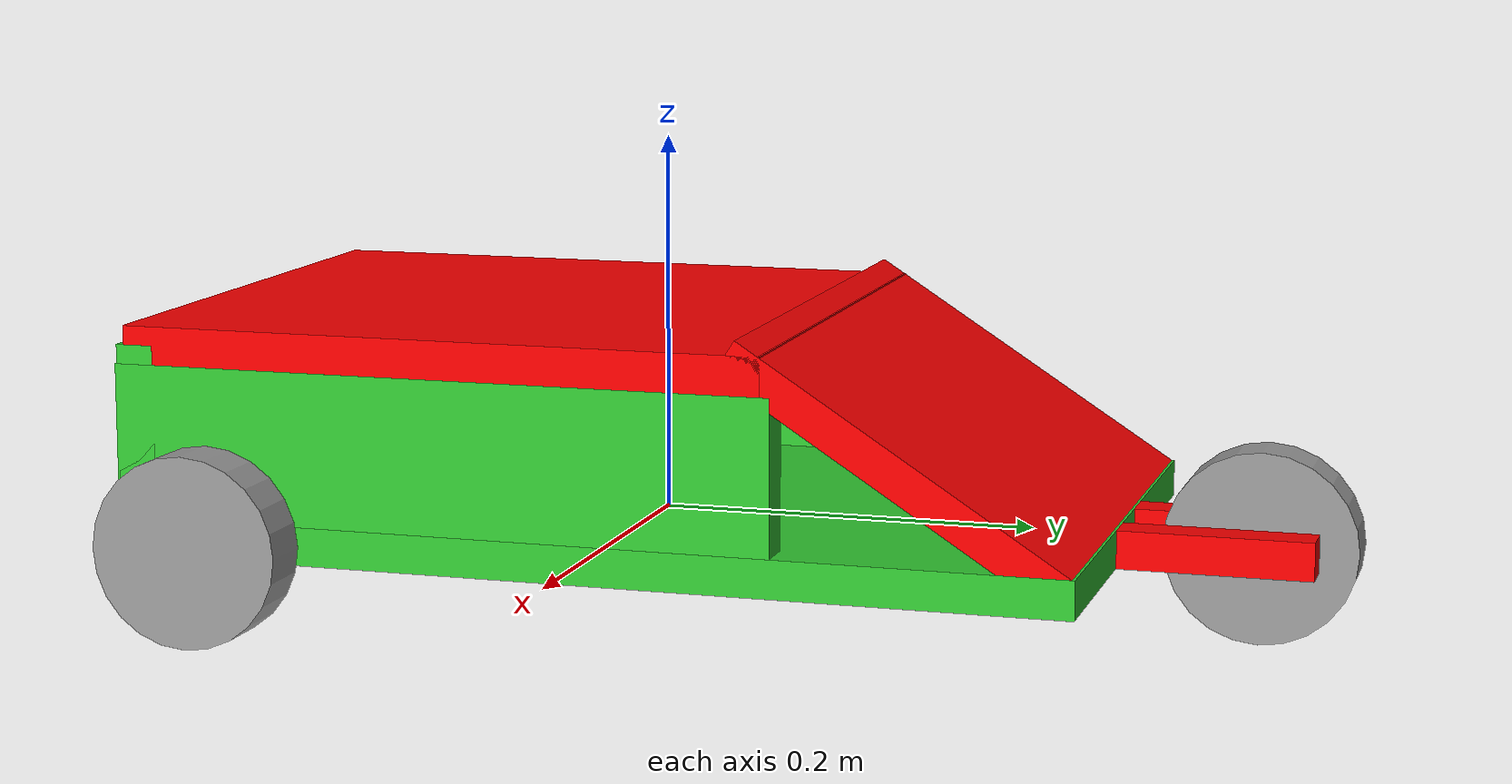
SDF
<?xml version='1.0'?>
<sdf version='1.6'>
  <model name='my_bot'>
    <link name='link_12'>
      <pose frame=''>-1e-06 0.16 0.055 1 -0 0</pose>
      <inertial>
        <mass>1</mass>
        <inertia>
          <ixx>0.166667</ixx>
          <ixy>0</ixy>
          <ixz>0</ixz>
          <iyy>0.166667</iyy>
          <iyz>0</iyz>
          <izz>0.166667</izz>
        </inertia>
        <pose frame=''>0 0 0 0 -0 0</pose>
      </inertial>
      <self_collide>0</self_collide>
      <kinematic>0</kinematic>
      <gravity>1</gravity>
      <visual name='visual'>
        <pose frame=''>0 0 0 0 -0 0</pose>
        <geometry>
          <box>
            <size>0.3 0.02 0.2</size>
          </box>
        </geometry>
        <material>
          <lighting>1</lighting>
          <script>
            <uri>file://media/materials/scripts/gazebo.material</uri>
            <name>Gazebo/Grey</name>
          </script>
          <ambient>1 0 0 1</ambient>
          <diffuse>0.7 0.7 0.7 1</diffuse>
          <specular>0.01 0.01 0.01 1</specular>
          <emissive>0 0 0 1</emissive>
          <shader type='vertex'>
            <normal_map>__default__</normal_map>
          </shader>
        </material>
        <transparency>0</transparency>
        <cast_shadows>1</cast_shadows>
      </visual>
      <collision name='collision'>
        <laser_retro>0</laser_retro>
        <max_contacts>10</max_contacts>
        <pose frame=''>0 0 0 0 -0 0</pose>
        <geometry>
          <box>
            <size>0.3 0.02 0.2</size>
          </box>
        </geometry>
        <surface>
          <friction>
            <ode>
              <mu>1</mu>
              <mu2>1</mu2>
              <fdir1>0 0 0</fdir1>
              <slip1>0</slip1>
              <slip2>0</slip2>
            </ode>
            <torsional>
              <coefficient>1</coefficient>
              <patch_radius>0</patch_radius>
              <surface_radius>0</surface_radius>
              <use_patch_radius>1</use_patch_radius>
              <ode>
                <slip>0</slip>
              </ode>
            </torsional>
          </friction>
          <bounce>
            <restitution_coefficient>0</restitution_coefficient>
            <threshold>1e+06</threshold>
          </bounce>
          <contact>
            <collide_without_contact>0</collide_without_contact>
            <collide_without_contact_bitmask>1</collide_without_contact_bitmask>
            <collide_bitmask>1</collide_bitmask>
            <ode>
              <soft_cfm>0</soft_cfm>
              <soft_erp>0.2</soft_erp>
              <kp>1e+13</kp>
              <kd>1</kd>
              <max_vel>0.01</max_vel>
              <min_depth>0</min_depth>
            </ode>
            <bullet>
              <split_impulse>1</split_impulse>
              <split_impulse_penetration_threshold>-0.01</split_impulse_penetration_threshold>
              <soft_cfm>0</soft_cfm>
              <soft_erp>0.2</soft_erp>
              <kp>1e+13</kp>
              <kd>1</kd>
            </bullet>
          </contact>
        </surface>
      </collision>
    </link>
    <link name='link_5'>
      <pose frame=''>0 0 0 0 -0 0</pose>
      <inertial>
        <mass>1</mass>
        <inertia>
          <ixx>0.166667</ixx>
          <ixy>0</ixy>
          <ixz>0</ixz>
          <iyy>0.166667</iyy>
          <iyz>0</iyz>
          <izz>0.166667</izz>
        </inertia>
        <pose frame=''>0 0 0 0 -0 0</pose>
      </inertial>
      <self_collide>0</self_collide>
      <kinematic>0</kinematic>
      <gravity>1</gravity>
      <visual name='visual'>
        <pose frame=''>0 0 0 0 -0 0</pose>
        <geometry>
          <box>
            <size>0.3 0.5 0.02</size>
          </box>
        </geometry>
        <material>
          <lighting>1</lighting>
          <script>
            <uri>file://media/materials/scripts/gazebo.material</uri>
            <name>Gazebo/Grey</name>
          </script>
          <ambient>0.2 0.8 0.2 1</ambient>
          <diffuse>0.7 0.7 0.7 1</diffuse>
          <specular>0.01 0.01 0.01 1</specular>
          <emissive>0 0 0 1</emissive>
          <shader type='vertex'>
            <normal_map>__default__</normal_map>
          </shader>
        </material>
        <transparency>0</transparency>
        <cast_shadows>1</cast_shadows>
      </visual>
      <collision name='collision'>
        <laser_retro>0</laser_retro>
        <max_contacts>10</max_contacts>
        <pose frame=''>0 0 0 0 -0 0</pose>
        <geometry>
          <box>
            <size>0.3 0.5 0.02</size>
          </box>
        </geometry>
        <surface>
          <friction>
            <ode>
              <mu>1</mu>
              <mu2>1</mu2>
              <fdir1>0 0 0</fdir1>
              <slip1>0</slip1>
              <slip2>0</slip2>
            </ode>
            <torsional>
              <coefficient>1</coefficient>
              <patch_radius>0</patch_radius>
              <surface_radius>0</surface_radius>
              <use_patch_radius>1</use_patch_radius>
              <ode>
                <slip>0</slip>
              </ode>
            </torsional>
          </friction>
          <bounce>
            <restitution_coefficient>0</restitution_coefficient>
            <threshold>1e+06</threshold>
          </bounce>
          <contact>
            <collide_without_contact>0</collide_without_contact>
            <collide_without_contact_bitmask>1</collide_without_contact_bitmask>
            <collide_bitmask>1</collide_bitmask>
            <ode>
              <soft_cfm>0</soft_cfm>
              <soft_erp>0.2</soft_erp>
              <kp>1e+13</kp>
              <kd>1</kd>
              <max_vel>0.01</max_vel>
              <min_depth>0</min_depth>
            </ode>
            <bullet>
              <split_impulse>1</split_impulse>
              <split_impulse_penetration_threshold>-0.01</split_impulse_penetration_threshold>
              <soft_cfm>0</soft_cfm>
              <soft_erp>0.2</soft_erp>
              <kp>1e+13</kp>
              <kd>1</kd>
            </bullet>
          </contact>
        </surface>
      </collision>
    </link>
    <link name='link_5_clone'>
      <pose frame=''>-0.139999 -0.076 0.04 3.12691 1.57079 3.12691</pose>
      <inertial>
        <mass>1</mass>
        <inertia>
          <ixx>0.166667</ixx>
          <ixy>0</ixy>
          <ixz>0</ixz>
          <iyy>0.166667</iyy>
          <iyz>0</iyz>
          <izz>0.166667</izz>
        </inertia>
        <pose frame=''>0 0 0 0 -0 0</pose>
      </inertial>
      <self_collide>0</self_collide>
      <kinematic>0</kinematic>
      <gravity>1</gravity>
      <visual name='visual'>
        <pose frame=''>0 0 0 0 -0 0</pose>
        <geometry>
          <box>
            <size>0.1 0.35 0.02</size>
          </box>
        </geometry>
        <material>
          <lighting>1</lighting>
          <script>
            <uri>file://media/materials/scripts/gazebo.material</uri>
            <name>Gazebo/Grey</name>
          </script>
          <ambient>0.2 0.8 0.2 1</ambient>
          <diffuse>0.7 0.7 0.7 1</diffuse>
          <specular>0.01 0.01 0.01 1</specular>
          <emissive>0 0 0 1</emissive>
          <shader type='vertex'>
            <normal_map>__default__</normal_map>
          </shader>
        </material>
        <transparency>0</transparency>
        <cast_shadows>1</cast_shadows>
      </visual>
      <collision name='collision'>
        <laser_retro>0</laser_retro>
        <max_contacts>10</max_contacts>
        <pose frame=''>0 0 0 0 -0 0</pose>
        <geometry>
          <box>
            <size>0.1 0.35 0.02</size>
          </box>
        </geometry>
        <surface>
          <friction>
            <ode>
              <mu>1</mu>
              <mu2>1</mu2>
              <fdir1>0 0 0</fdir1>
              <slip1>0</slip1>
              <slip2>0</slip2>
            </ode>
            <torsional>
              <coefficient>1</coefficient>
              <patch_radius>0</patch_radius>
              <surface_radius>0</surface_radius>
              <use_patch_radius>1</use_patch_radius>
              <ode>
                <slip>0</slip>
              </ode>
            </torsional>
          </friction>
          <bounce>
            <restitution_coefficient>0</restitution_coefficient>
            <threshold>1e+06</threshold>
          </bounce>
          <contact>
            <collide_without_contact>0</collide_without_contact>
            <collide_without_contact_bitmask>1</collide_without_contact_bitmask>
            <collide_bitmask>1</collide_bitmask>
            <ode>
              <soft_cfm>0</soft_cfm>
              <soft_erp>0.2</soft_erp>
              <kp>1e+13</kp>
              <kd>1</kd>
              <max_vel>0.01</max_vel>
              <min_depth>0</min_depth>
            </ode>
            <bullet>
              <split_impulse>1</split_impulse>
              <split_impulse_penetration_threshold>-0.01</split_impulse_penetration_threshold>
              <soft_cfm>0</soft_cfm>
              <soft_erp>0.2</soft_erp>
              <kp>1e+13</kp>
              <kd>1</kd>
            </bullet>
          </contact>
        </surface>
      </collision>
    </link>
    <link name='link_5_clone_0'>
      <pose frame=''>-1e-06 -0.076 0.1 0 -0 0</pose>
      <inertial>
        <mass>0.999845</mass>
        <inertia>
          <ixx>0.166615</ixx>
          <ixy>0</ixy>
          <ixz>0</ixz>
          <iyy>0.166641</iyy>
          <iyz>0</iyz>
          <izz>0.166615</izz>
        </inertia>
        <pose frame=''>0 0 0 0 -0 0</pose>
      </inertial>
      <self_collide>0</self_collide>
      <kinematic>0</kinematic>
      <gravity>1</gravity>
      <visual name='visual'>
        <pose frame=''>0 0 0 0 -0 0</pose>
        <geometry>
          <box>
            <size>0.3 0.339947 0.02</size>
          </box>
        </geometry>
        <material>
          <lighting>1</lighting>
          <script>
            <uri>file://media/materials/scripts/gazebo.material</uri>
            <name>Gazebo/Grey</name>
          </script>
          <ambient>1 0 0 1</ambient>
          <diffuse>0.7 0.7 0.7 1</diffuse>
          <specular>0.01 0.01 0.01 1</specular>
          <emissive>0 0 0 1</emissive>
          <shader type='vertex'>
            <normal_map>__default__</normal_map>
          </shader>
        </material>
        <transparency>0</transparency>
        <cast_shadows>1</cast_shadows>
      </visual>
      <collision name='collision'>
        <laser_retro>0</laser_retro>
        <max_contacts>10</max_contacts>
        <pose frame=''>0 0 0 0 -0 0</pose>
        <geometry>
          <box>
            <size>0.3 0.339947 0.02</size>
          </box>
        </geometry>
        <surface>
          <friction>
            <ode>
              <mu>1</mu>
              <mu2>1</mu2>
              <fdir1>0 0 0</fdir1>
              <slip1>0</slip1>
              <slip2>0</slip2>
            </ode>
            <torsional>
              <coefficient>1</coefficient>
              <patch_radius>0</patch_radius>
              <surface_radius>0</surface_radius>
              <use_patch_radius>1</use_patch_radius>
              <ode>
                <slip>0</slip>
              </ode>
            </torsional>
          </friction>
          <bounce>
            <restitution_coefficient>0</restitution_coefficient>
            <threshold>1e+06</threshold>
          </bounce>
          <contact>
            <collide_without_contact>0</collide_without_contact>
            <collide_without_contact_bitmask>1</collide_without_contact_bitmask>
            <collide_bitmask>1</collide_bitmask>
            <ode>
              <soft_cfm>0</soft_cfm>
              <soft_erp>0.2</soft_erp>
              <kp>1e+13</kp>
              <kd>1</kd>
              <max_vel>0.01</max_vel>
              <min_depth>0</min_depth>
            </ode>
            <bullet>
              <split_impulse>1</split_impulse>
              <split_impulse_penetration_threshold>-0.01</split_impulse_penetration_threshold>
              <soft_cfm>0</soft_cfm>
              <soft_erp>0.2</soft_erp>
              <kp>1e+13</kp>
              <kd>1</kd>
            </bullet>
          </contact>
        </surface>
      </collision>
    </link>
    <link name='link_5_clone_clone'>
      <pose frame=''>0.14 -0.076 0.04 3.12691 1.57079 3.12691</pose>
      <inertial>
        <mass>1</mass>
        <inertia>
          <ixx>0.166667</ixx>
          <ixy>0</ixy>
          <ixz>0</ixz>
          <iyy>0.166667</iyy>
          <iyz>0</iyz>
          <izz>0.166667</izz>
        </inertia>
        <pose frame=''>0 0 0 0 -0 0</pose>
      </inertial>
      <self_collide>0</self_collide>
      <kinematic>0</kinematic>
      <gravity>1</gravity>
      <visual name='visual'>
        <pose frame=''>0 0 0 0 -0 0</pose>
        <geometry>
          <box>
            <size>0.1 0.35 0.02</size>
          </box>
        </geometry>
        <material>
          <lighting>1</lighting>
          <script>
            <uri>file://media/materials/scripts/gazebo.material</uri>
            <name>Gazebo/Grey</name>
          </script>
          <ambient>0.2 0.8 0.2 1</ambient>
          <diffuse>0.7 0.7 0.7 1</diffuse>
          <specular>0.01 0.01 0.01 1</specular>
          <emissive>0 0 0 1</emissive>
          <shader type='vertex'>
            <normal_map>__default__</normal_map>
          </shader>
        </material>
        <transparency>0</transparency>
        <cast_shadows>1</cast_shadows>
      </visual>
      <collision name='collision'>
        <laser_retro>0</laser_retro>
        <max_contacts>10</max_contacts>
        <pose frame=''>0 0 0 0 -0 0</pose>
        <geometry>
          <box>
            <size>0.1 0.35 0.02</size>
          </box>
        </geometry>
        <surface>
          <friction>
            <ode>
              <mu>1</mu>
              <mu2>1</mu2>
              <fdir1>0 0 0</fdir1>
              <slip1>0</slip1>
              <slip2>0</slip2>
            </ode>
            <torsional>
              <coefficient>1</coefficient>
              <patch_radius>0</patch_radius>
              <surface_radius>0</surface_radius>
              <use_patch_radius>1</use_patch_radius>
              <ode>
                <slip>0</slip>
              </ode>
            </torsional>
          </friction>
          <bounce>
            <restitution_coefficient>0</restitution_coefficient>
            <threshold>1e+06</threshold>
          </bounce>
          <contact>
            <collide_without_contact>0</collide_without_contact>
            <collide_without_contact_bitmask>1</collide_without_contact_bitmask>
            <collide_bitmask>1</collide_bitmask>
            <ode>
              <soft_cfm>0</soft_cfm>
              <soft_erp>0.2</soft_erp>
              <kp>1e+13</kp>
              <kd>1</kd>
              <max_vel>0.01</max_vel>
              <min_depth>0</min_depth>
            </ode>
            <bullet>
              <split_impulse>1</split_impulse>
              <split_impulse_penetration_threshold>-0.01</split_impulse_penetration_threshold>
              <soft_cfm>0</soft_cfm>
              <soft_erp>0.2</soft_erp>
              <kp>1e+13</kp>
              <kd>1</kd>
            </bullet>
          </contact>
        </surface>
      </collision>
    </link>
    <link name='link_5_clone_clone_clone'>
      <pose frame=''>0 -0.239999 0.05 -1.53302 1.57079 0.037763</pose>
      <inertial>
        <mass>1</mass>
        <inertia>
          <ixx>0.166667</ixx>
          <ixy>0</ixy>
          <ixz>0</ixz>
          <iyy>0.166667</iyy>
          <iyz>0</iyz>
          <izz>0.166667</izz>
        </inertia>
        <pose frame=''>1.4 0.7 1 0 -0 0</pose>
      </inertial>
      <self_collide>0</self_collide>
      <kinematic>0</kinematic>
      <gravity>1</gravity>
      <visual name='visual'>
        <pose frame=''>0 0 0 0 -0 0</pose>
        <geometry>
          <box>
            <size>0.1 0.3 0.02</size>
          </box>
        </geometry>
        <material>
          <lighting>1</lighting>
          <script>
            <uri>file://media/materials/scripts/gazebo.material</uri>
            <name>Gazebo/Grey</name>
          </script>
          <ambient>0.2 0.8 0.2 1</ambient>
          <diffuse>0.7 0.7 0.7 1</diffuse>
          <specular>0.01 0.01 0.01 1</specular>
          <emissive>0 0 0 1</emissive>
          <shader type='vertex'>
            <normal_map>__default__</normal_map>
          </shader>
        </material>
        <transparency>0</transparency>
        <cast_shadows>1</cast_shadows>
      </visual>
      <collision name='collision'>
        <laser_retro>0</laser_retro>
        <max_contacts>10</max_contacts>
        <pose frame=''>0 0 0 0 -0 0</pose>
        <geometry>
          <box>
            <size>0.1 0.3 0.02</size>
          </box>
        </geometry>
        <surface>
          <friction>
            <ode>
              <mu>1</mu>
              <mu2>1</mu2>
              <fdir1>0 0 0</fdir1>
              <slip1>0</slip1>
              <slip2>0</slip2>
            </ode>
            <torsional>
              <coefficient>1</coefficient>
              <patch_radius>0</patch_radius>
              <surface_radius>0</surface_radius>
              <use_patch_radius>1</use_patch_radius>
              <ode>
                <slip>0</slip>
              </ode>
            </torsional>
          </friction>
          <bounce>
            <restitution_coefficient>0</restitution_coefficient>
            <threshold>1e+06</threshold>
          </bounce>
          <contact>
            <collide_without_contact>0</collide_without_contact>
            <collide_without_contact_bitmask>1</collide_without_contact_bitmask>
            <collide_bitmask>1</collide_bitmask>
            <ode>
              <soft_cfm>0</soft_cfm>
              <soft_erp>0.2</soft_erp>
              <kp>1e+13</kp>
              <kd>1</kd>
              <max_vel>0.01</max_vel>
              <min_depth>0</min_depth>
            </ode>
            <bullet>
              <split_impulse>1</split_impulse>
              <split_impulse_penetration_threshold>-0.01</split_impulse_penetration_threshold>
              <soft_cfm>0</soft_cfm>
              <soft_erp>0.2</soft_erp>
              <kp>1e+13</kp>
              <kd>1</kd>
            </bullet>
          </contact>
        </surface>
      </collision>
    </link>
    <link name='link_6'>
      <pose frame=''>-0.167 -0.2 -0 3.12691 1.57079 3.12691</pose>
      <inertial>
        <mass>1</mass>
        <inertia>
          <ixx>0.145833</ixx>
          <ixy>0</ixy>
          <ixz>0</ixz>
          <iyy>0.145833</iyy>
          <iyz>0</iyz>
          <izz>0.125</izz>
        </inertia>
        <pose frame=''>0 0 0 0 -0 0</pose>
      </inertial>
      <self_collide>0</self_collide>
      <kinematic>0</kinematic>
      <gravity>1</gravity>
      <visual name='visual'>
        <pose frame=''>0 0 0 0 -0 0</pose>
        <geometry>
          <cylinder>
            <radius>0.05</radius>
            <length>0.03</length>
          </cylinder>
        </geometry>
        <material>
          <lighting>1</lighting>
          <script>
            <uri>file://media/materials/scripts/gazebo.material</uri>
            <name>Gazebo/Grey</name>
          </script>
          <ambient>0 0 0 1</ambient>
          <diffuse>0.7 0.7 0.7 1</diffuse>
          <specular>0.01 0.01 0.01 1</specular>
          <emissive>0 0 0 1</emissive>
          <shader type='vertex'>
            <normal_map>__default__</normal_map>
          </shader>
        </material>
        <transparency>0</transparency>
        <cast_shadows>1</cast_shadows>
      </visual>
      <collision name='collision'>
        <laser_retro>0</laser_retro>
        <max_contacts>10</max_contacts>
        <pose frame=''>0 0 0 0 -0 0</pose>
        <geometry>
          <cylinder>
            <radius>0.05</radius>
            <length>0.03</length>
          </cylinder>
        </geometry>
        <surface>
          <friction>
            <ode>
              <mu>1</mu>
              <mu2>1</mu2>
              <fdir1>0 0 0</fdir1>
              <slip1>0</slip1>
              <slip2>0</slip2>
            </ode>
            <torsional>
              <coefficient>1</coefficient>
              <patch_radius>0</patch_radius>
              <surface_radius>0</surface_radius>
              <use_patch_radius>1</use_patch_radius>
              <ode>
                <slip>0</slip>
              </ode>
            </torsional>
          </friction>
          <bounce>
            <restitution_coefficient>0</restitution_coefficient>
            <threshold>1e+06</threshold>
          </bounce>
          <contact>
            <collide_without_contact>0</collide_without_contact>
            <collide_without_contact_bitmask>1</collide_without_contact_bitmask>
            <collide_bitmask>1</collide_bitmask>
            <ode>
              <soft_cfm>0</soft_cfm>
              <soft_erp>0.2</soft_erp>
              <kp>1e+13</kp>
              <kd>1</kd>
              <max_vel>0.01</max_vel>
              <min_depth>0</min_depth>
            </ode>
            <bullet>
              <split_impulse>1</split_impulse>
              <split_impulse_penetration_threshold>-0.01</split_impulse_penetration_threshold>
              <soft_cfm>0</soft_cfm>
              <soft_erp>0.2</soft_erp>
              <kp>1e+13</kp>
              <kd>1</kd>
            </bullet>
          </contact>
        </surface>
      </collision>
    </link>
    <link name='link_6_clone'>
      <pose frame=''>0 0.32 0 3.08926 1.57079 3.08926</pose>
      <inertial>
        <mass>1</mass>
        <inertia>
          <ixx>0.145833</ixx>
          <ixy>0</ixy>
          <ixz>0</ixz>
          <iyy>0.145833</iyy>
          <iyz>0</iyz>
          <izz>0.125</izz>
        </inertia>
        <pose frame=''>0 0 0 0 -0 0</pose>
      </inertial>
      <self_collide>0</self_collide>
      <kinematic>0</kinematic>
      <gravity>1</gravity>
      <visual name='visual'>
        <pose frame=''>0 0 0 0 -0 0</pose>
        <geometry>
          <cylinder>
            <radius>0.05</radius>
            <length>0.03</length>
          </cylinder>
        </geometry>
        <material>
          <lighting>1</lighting>
          <script>
            <uri>file://media/materials/scripts/gazebo.material</uri>
            <name>Gazebo/Grey</name>
          </script>
          <ambient>0 0 0 1</ambient>
          <diffuse>0.7 0.7 0.7 1</diffuse>
          <specular>0.01 0.01 0.01 1</specular>
          <emissive>0 0 0 1</emissive>
          <shader type='vertex'>
            <normal_map>__default__</normal_map>
          </shader>
        </material>
        <transparency>0</transparency>
        <cast_shadows>1</cast_shadows>
      </visual>
      <collision name='collision'>
        <laser_retro>0</laser_retro>
        <max_contacts>10</max_contacts>
        <pose frame=''>0 0 0 0 -0 0</pose>
        <geometry>
          <cylinder>
            <radius>0.05</radius>
            <length>0.03</length>
          </cylinder>
        </geometry>
        <surface>
          <friction>
            <ode>
              <mu>1</mu>
              <mu2>1</mu2>
              <fdir1>0 0 0</fdir1>
              <slip1>0</slip1>
              <slip2>0</slip2>
            </ode>
            <torsional>
              <coefficient>1</coefficient>
              <patch_radius>0</patch_radius>
              <surface_radius>0</surface_radius>
              <use_patch_radius>1</use_patch_radius>
              <ode>
                <slip>0</slip>
              </ode>
            </torsional>
          </friction>
          <bounce>
            <restitution_coefficient>0</restitution_coefficient>
            <threshold>1e+06</threshold>
          </bounce>
          <contact>
            <collide_without_contact>0</collide_without_contact>
            <collide_without_contact_bitmask>1</collide_without_contact_bitmask>
            <collide_bitmask>1</collide_bitmask>
            <ode>
              <soft_cfm>0</soft_cfm>
              <soft_erp>0.2</soft_erp>
              <kp>1e+13</kp>
              <kd>1</kd>
              <max_vel>0.01</max_vel>
              <min_depth>0</min_depth>
            </ode>
            <bullet>
              <split_impulse>1</split_impulse>
              <split_impulse_penetration_threshold>-0.01</split_impulse_penetration_threshold>
              <soft_cfm>0</soft_cfm>
              <soft_erp>0.2</soft_erp>
              <kp>1e+13</kp>
              <kd>1</kd>
            </bullet>
          </contact>
        </surface>
      </collision>
    </link>
    <link name='link_6_clone_0'>
      <pose frame=''>0.167001 -0.199998 -0 3.12691 1.57079 3.12691</pose>
      <inertial>
        <mass>1</mass>
        <inertia>
          <ixx>0.145833</ixx>
          <ixy>0</ixy>
          <ixz>0</ixz>
          <iyy>0.145833</iyy>
          <iyz>0</iyz>
          <izz>0.125</izz>
        </inertia>
        <pose frame=''>0 0 0 0 -0 0</pose>
      </inertial>
      <self_collide>0</self_collide>
      <kinematic>0</kinematic>
      <gravity>1</gravity>
      <visual name='visual'>
        <pose frame=''>0 0 0 0 -0 0</pose>
        <geometry>
          <cylinder>
            <radius>0.05</radius>
            <length>0.03</length>
          </cylinder>
        </geometry>
        <material>
          <lighting>1</lighting>
          <script>
            <uri>file://media/materials/scripts/gazebo.material</uri>
            <name>Gazebo/Grey</name>
          </script>
          <ambient>0 0 0 1</ambient>
          <diffuse>0.7 0.7 0.7 1</diffuse>
          <specular>0.01 0.01 0.01 1</specular>
          <emissive>0 0 0 1</emissive>
          <shader type='vertex'>
            <normal_map>__default__</normal_map>
          </shader>
        </material>
        <transparency>0</transparency>
        <cast_shadows>1</cast_shadows>
      </visual>
      <collision name='collision'>
        <laser_retro>0</laser_retro>
        <max_contacts>10</max_contacts>
        <pose frame=''>0 0 0 0 -0 0</pose>
        <geometry>
          <cylinder>
            <radius>0.05</radius>
            <length>0.03</length>
          </cylinder>
        </geometry>
        <surface>
          <friction>
            <ode>
              <mu>1</mu>
              <mu2>1</mu2>
              <fdir1>0 0 0</fdir1>
              <slip1>0</slip1>
              <slip2>0</slip2>
            </ode>
            <torsional>
              <coefficient>1</coefficient>
              <patch_radius>0</patch_radius>
              <surface_radius>0</surface_radius>
              <use_patch_radius>1</use_patch_radius>
              <ode>
                <slip>0</slip>
              </ode>
            </torsional>
          </friction>
          <bounce>
            <restitution_coefficient>0</restitution_coefficient>
            <threshold>1e+06</threshold>
          </bounce>
          <contact>
            <collide_without_contact>0</collide_without_contact>
            <collide_without_contact_bitmask>1</collide_without_contact_bitmask>
            <collide_bitmask>1</collide_bitmask>
            <ode>
              <soft_cfm>0</soft_cfm>
              <soft_erp>0.2</soft_erp>
              <kp>1e+13</kp>
              <kd>1</kd>
              <max_vel>0.01</max_vel>
              <min_depth>0</min_depth>
            </ode>
            <bullet>
              <split_impulse>1</split_impulse>
              <split_impulse_penetration_threshold>-0.01</split_impulse_penetration_threshold>
              <soft_cfm>0</soft_cfm>
              <soft_erp>0.2</soft_erp>
              <kp>1e+13</kp>
              <kd>1</kd>
            </bullet>
          </contact>
        </surface>
      </collision>
    </link>
    <link name='link_7'>
      <pose frame=''>-0.026998 0.3 0 0 -0 0</pose>
      <inertial>
        <mass>1</mass>
        <inertia>
          <ixx>0.166667</ixx>
          <ixy>0</ixy>
          <ixz>0</ixz>
          <iyy>0.166667</iyy>
          <iyz>0</iyz>
          <izz>0.166667</izz>
        </inertia>
        <pose frame=''>0 0 0 0 -0 0</pose>
      </inertial>
      <self_collide>0</self_collide>
      <kinematic>0</kinematic>
      <gravity>1</gravity>
      <visual name='visual'>
        <pose frame=''>0 0 0 0 -0 0</pose>
        <geometry>
          <box>
            <size>0.02 0.1 0.02</size>
          </box>
        </geometry>
        <material>
          <lighting>1</lighting>
          <script>
            <uri>file://media/materials/scripts/gazebo.material</uri>
            <name>Gazebo/Grey</name>
          </script>
          <ambient>1 0 0 1</ambient>
          <diffuse>0.7 0.7 0.7 1</diffuse>
          <specular>0.01 0.01 0.01 1</specular>
          <emissive>0 0 0 1</emissive>
          <shader type='vertex'>
            <normal_map>__default__</normal_map>
          </shader>
        </material>
        <transparency>0</transparency>
        <cast_shadows>1</cast_shadows>
      </visual>
      <collision name='collision'>
        <laser_retro>0</laser_retro>
        <max_contacts>10</max_contacts>
        <pose frame=''>0 0 0 0 -0 0</pose>
        <geometry>
          <box>
            <size>0.02 0.1 0.02</size>
          </box>
        </geometry>
        <surface>
          <friction>
            <ode>
              <mu>1</mu>
              <mu2>1</mu2>
              <fdir1>0 0 0</fdir1>
              <slip1>0</slip1>
              <slip2>0</slip2>
            </ode>
            <torsional>
              <coefficient>1</coefficient>
              <patch_radius>0</patch_radius>
              <surface_radius>0</surface_radius>
              <use_patch_radius>1</use_patch_radius>
              <ode>
                <slip>0</slip>
              </ode>
            </torsional>
          </friction>
          <bounce>
            <restitution_coefficient>0</restitution_coefficient>
            <threshold>1e+06</threshold>
          </bounce>
          <contact>
            <collide_without_contact>0</collide_without_contact>
            <collide_without_contact_bitmask>1</collide_without_contact_bitmask>
            <collide_bitmask>1</collide_bitmask>
            <ode>
              <soft_cfm>0</soft_cfm>
              <soft_erp>0.2</soft_erp>
              <kp>1e+13</kp>
              <kd>1</kd>
              <max_vel>0.01</max_vel>
              <min_depth>0</min_depth>
            </ode>
            <bullet>
              <split_impulse>1</split_impulse>
              <split_impulse_penetration_threshold>-0.01</split_impulse_penetration_threshold>
              <soft_cfm>0</soft_cfm>
              <soft_erp>0.2</soft_erp>
              <kp>1e+13</kp>
              <kd>1</kd>
            </bullet>
          </contact>
        </surface>
      </collision>
    </link>
    <link name='link_7_clone'>
      <pose frame=''>0.027 0.3 -0 -3e-06 -2e-06 0.000736</pose>
      <inertial>
        <mass>1</mass>
        <inertia>
          <ixx>0.166667</ixx>
          <ixy>0</ixy>
          <ixz>0</ixz>
          <iyy>0.166667</iyy>
          <iyz>0</iyz>
          <izz>0.166667</izz>
        </inertia>
        <pose frame=''>0 0 0 0 -0 0</pose>
      </inertial>
      <self_collide>0</self_collide>
      <kinematic>0</kinematic>
      <gravity>1</gravity>
      <visual name='visual'>
        <pose frame=''>0 0 0 0 -0 0</pose>
        <geometry>
          <box>
            <size>0.02 0.1 0.02</size>
          </box>
        </geometry>
        <material>
          <lighting>1</lighting>
          <script>
            <uri>file://media/materials/scripts/gazebo.material</uri>
            <name>Gazebo/Grey</name>
          </script>
          <ambient>1 0 0 1</ambient>
          <diffuse>0.7 0.7 0.7 1</diffuse>
          <specular>0.01 0.01 0.01 1</specular>
          <emissive>0 0 0 1</emissive>
          <shader type='vertex'>
            <normal_map>__default__</normal_map>
          </shader>
        </material>
        <transparency>0</transparency>
        <cast_shadows>1</cast_shadows>
      </visual>
      <collision name='collision'>
        <laser_retro>0</laser_retro>
        <max_contacts>10</max_contacts>
        <pose frame=''>0 0 0 0 -0 0</pose>
        <geometry>
          <box>
            <size>0.02 0.1 0.02</size>
          </box>
        </geometry>
        <surface>
          <friction>
            <ode>
              <mu>1</mu>
              <mu2>1</mu2>
              <fdir1>0 0 0</fdir1>
              <slip1>0</slip1>
              <slip2>0</slip2>
            </ode>
            <torsional>
              <coefficient>1</coefficient>
              <patch_radius>0</patch_radius>
              <surface_radius>0</surface_radius>
              <use_patch_radius>1</use_patch_radius>
              <ode>
                <slip>0</slip>
              </ode>
            </torsional>
          </friction>
          <bounce>
            <restitution_coefficient>0</restitution_coefficient>
            <threshold>1e+06</threshold>
          </bounce>
          <contact>
            <collide_without_contact>0</collide_without_contact>
            <collide_without_contact_bitmask>1</collide_without_contact_bitmask>
            <collide_bitmask>1</collide_bitmask>
            <ode>
              <soft_cfm>0</soft_cfm>
              <soft_erp>0.2</soft_erp>
              <kp>1e+13</kp>
              <kd>1</kd>
              <max_vel>0.01</max_vel>
              <min_depth>0</min_depth>
            </ode>
            <bullet>
              <split_impulse>1</split_impulse>
              <split_impulse_penetration_threshold>-0.01</split_impulse_penetration_threshold>
              <soft_cfm>0</soft_cfm>
              <soft_erp>0.2</soft_erp>
              <kp>1e+13</kp>
              <kd>1</kd>
            </bullet>
          </contact>
        </surface>
      </collision>
    </link>
    <joint name='link_5_JOINT_10' type='revolute'>
      <parent>link_5</parent>
      <child>link_6</child>
      <pose frame=''>0 0 0 0 -0 0</pose>
      <axis>
        <xyz>0 0 1</xyz>
        <use_parent_model_frame>0</use_parent_model_frame>
        <limit>
          <lower>-1.79769e+308</lower>
          <upper>1.79769e+308</upper>
          <effort>-1</effort>
          <velocity>-1</velocity>
        </limit>
        <dynamics>
          <spring_reference>0</spring_reference>
          <spring_stiffness>0</spring_stiffness>
          <damping>0</damping>
          <friction>0</friction>
        </dynamics>
      </axis>
      <physics>
        <ode>
          <limit>
            <cfm>0</cfm>
            <erp>0.2</erp>
          </limit>
          <suspension>
            <cfm>0</cfm>
            <erp>0.2</erp>
          </suspension>
        </ode>
      </physics>
    </joint>
    <joint name='link_5_JOINT_11' type='revolute'>
      <parent>link_5</parent>
      <child>link_6_clone_0</child>
      <pose frame=''>0 0 0 0 -0 0</pose>
      <axis>
        <xyz>0 0 1</xyz>
        <use_parent_model_frame>0</use_parent_model_frame>
        <limit>
          <lower>-1.79769e+308</lower>
          <upper>1.79769e+308</upper>
          <effort>-1</effort>
          <velocity>-1</velocity>
        </limit>
        <dynamics>
          <spring_reference>0</spring_reference>
          <spring_stiffness>0</spring_stiffness>
          <damping>0</damping>
          <friction>0</friction>
        </dynamics>
      </axis>
      <physics>
        <ode>
          <limit>
            <cfm>0</cfm>
            <erp>0.2</erp>
          </limit>
          <suspension>
            <cfm>0</cfm>
            <erp>0.2</erp>
          </suspension>
        </ode>
      </physics>
    </joint>
    <joint name='link_5_JOINT_2' type='fixed'>
      <parent>link_5</parent>
      <child>link_7_clone</child>
      <pose frame=''>0 0 0 0 -0 0</pose>
      <physics>
        <ode>
          <limit>
            <cfm>0</cfm>
            <erp>0.2</erp>
          </limit>
          <suspension>
            <cfm>0</cfm>
            <erp>0.2</erp>
          </suspension>
        </ode>
      </physics>
    </joint>
    <joint name='link_5_JOINT_3' type='fixed'>
      <parent>link_5</parent>
      <child>link_7</child>
      <pose frame=''>0 0 0 0 -0 0</pose>
      <physics>
        <ode>
          <limit>
            <cfm>0</cfm>
            <erp>0.2</erp>
          </limit>
          <suspension>
            <cfm>0</cfm>
            <erp>0.2</erp>
          </suspension>
        </ode>
      </physics>
    </joint>
    <joint name='link_5_JOINT_5' type='fixed'>
      <parent>link_5</parent>
      <child>link_5_clone</child>
      <pose frame=''>0 0 0 0 -0 0</pose>
      <physics>
        <ode>
          <limit>
            <cfm>0</cfm>
            <erp>0.2</erp>
          </limit>
          <suspension>
            <cfm>0</cfm>
            <erp>0.2</erp>
          </suspension>
        </ode>
      </physics>
    </joint>
    <joint name='link_5_JOINT_6' type='fixed'>
      <parent>link_5</parent>
      <child>link_5_clone_0</child>
      <pose frame=''>0 0 0 0 -0 0</pose>
      <physics>
        <ode>
          <limit>
            <cfm>0</cfm>
            <erp>0.2</erp>
          </limit>
          <suspension>
            <cfm>0</cfm>
            <erp>0.2</erp>
          </suspension>
        </ode>
      </physics>
    </joint>
    <joint name='link_5_JOINT_7' type='fixed'>
      <parent>link_5</parent>
      <child>link_12</child>
      <pose frame=''>0 0 0 0 -0 0</pose>
      <physics>
        <ode>
          <limit>
            <cfm>0</cfm>
            <erp>0.2</erp>
          </limit>
          <suspension>
            <cfm>0</cfm>
            <erp>0.2</erp>
          </suspension>
        </ode>
      </physics>
    </joint>
    <joint name='link_5_JOINT_8' type='fixed'>
      <parent>link_5</parent>
      <child>link_5_clone_clone_clone</child>
      <pose frame=''>0 0 0 0 -0 0</pose>
      <physics>
        <ode>
          <limit>
            <cfm>0</cfm>
            <erp>0.2</erp>
          </limit>
          <suspension>
            <cfm>0</cfm>
            <erp>0.2</erp>
          </suspension>
        </ode>
      </physics>
    </joint>
    <joint name='link_5_JOINT_9' type='fixed'>
      <parent>link_5</parent>
      <child>link_5_clone_clone</child>
      <pose frame=''>0 0 0 0 -0 0</pose>
      <physics>
        <ode>
          <limit>
            <cfm>0</cfm>
            <erp>0.2</erp>
          </limit>
          <suspension>
            <cfm>0</cfm>
            <erp>0.2</erp>
          </suspension>
        </ode>
      </physics>
    </joint>
    <joint name='link_7_JOINT_4' type='revolute'>
      <parent>link_7</parent>
      <child>link_6_clone</child>
      <pose frame=''>0 0 0 0 -0 0</pose>
      <axis>
        <xyz>0 0 1</xyz>
        <use_parent_model_frame>0</use_parent_model_frame>
        <limit>
          <lower>-1.79769e+308</lower>
          <upper>1.79769e+308</upper>
          <effort>-1</effort>
          <velocity>-1</velocity>
        </limit>
        <dynamics>
          <spring_reference>0</spring_reference>
          <spring_stiffness>0</spring_stiffness>
          <damping>0</damping>
          <friction>0</friction>
        </dynamics>
      </axis>
      <physics>
        <ode>
          <limit>
            <cfm>0</cfm>
            <erp>0.2</erp>
          </limit>
          <suspension>
            <cfm>0</cfm>
            <erp>0.2</erp>
          </suspension>
        </ode>
      </physics>
    </joint>
    <joint name='link_7_clone_JOINT_1' type='revolute'>
      <parent>link_7_clone</parent>
      <child>link_6_clone</child>
      <pose frame=''>0 0 0 0 -0 0</pose>
      <axis>
        <xyz>0 0 1</xyz>
        <use_parent_model_frame>0</use_parent_model_frame>
        <limit>
          <lower>-1.79769e+308</lower>
          <upper>1.79769e+308</upper>
          <effort>-1</effort>
          <velocity>-1</velocity>
        </limit>
        <dynamics>
          <spring_reference>0</spring_reference>
          <spring_stiffness>0</spring_stiffness>
          <damping>0</damping>
          <friction>0</friction>
        </dynamics>
      </axis>
      <physics>
        <ode>
          <limit>
            <cfm>0</cfm>
            <erp>0.2</erp>
          </limit>
          <suspension>
            <cfm>0</cfm>
            <erp>0.2</erp>
          </suspension>
        </ode>
      </physics>
    </joint>
    <static>0</static>
    <allow_auto_disable>1</allow_auto_disable>
  </model>
</sdf>
